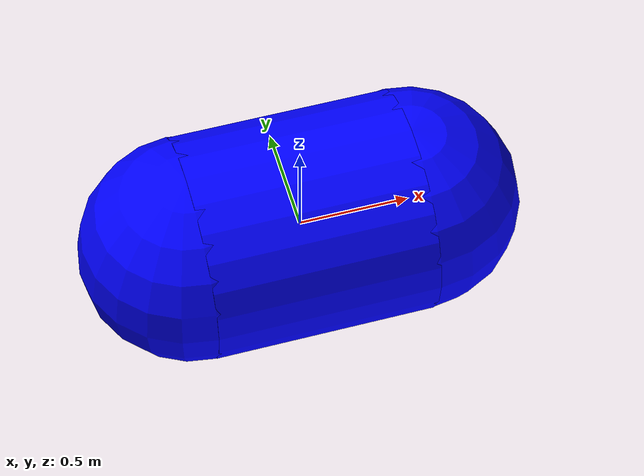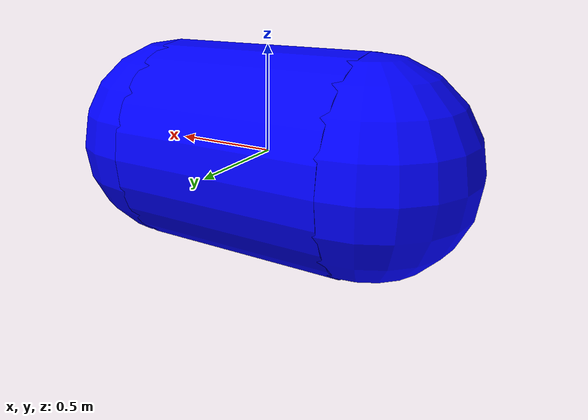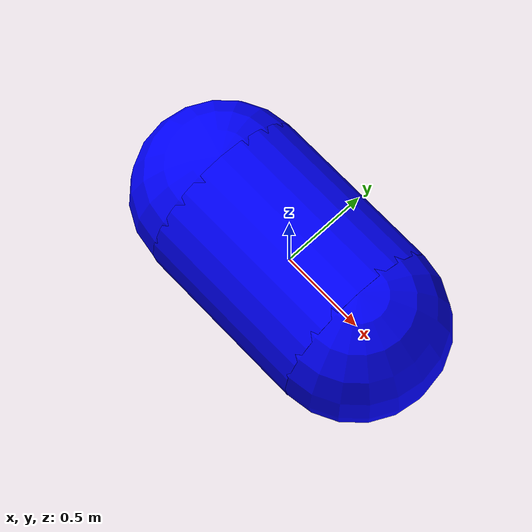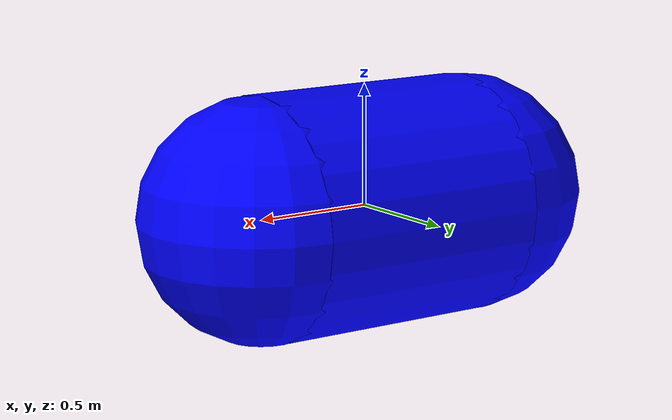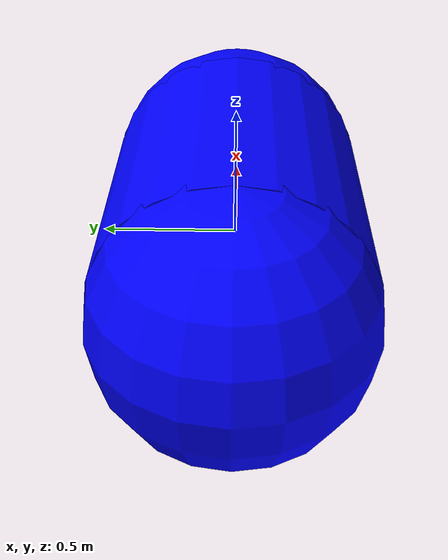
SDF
<?xml version="1.0" ?>
<sdf version="1.8">
    <world name="car_world">
        <physics name="1ms" type="ignored">
            <max_step_size>0.001</max_step_size>
            <real_time_factor>1.0</real_time_factor>
        </physics>
        <plugin
            filename="libignition-gazebo-physics-system.so"
            name="ignition::gazebo::systems::Physics">
        </plugin>
        <plugin
            filename="libignition-gazebo-user-commands-system.so"
            name="ignition::gazebo::systems::UserCommands">
        </plugin>
        <plugin
            filename="libignition-gazebo-scene-broadcaster-system.so"
            name="ignition::gazebo::systems::SceneBroadcaster">
        </plugin>

        <light type="directional" name="sun">
            <cast_shadows>true</cast_shadows>
            <pose>0 0 10 0 0 0</pose>
            <diffuse>0.8 0.8 0.8 1</diffuse>
            <specular>0.2 0.2 0.2 1</specular>
            <attenuation>
                <range>1000</range>
                <constant>0.9</constant>
                <linear>0.01</linear>
                <quadratic>0.001</quadratic>
            </attenuation>
            <direction>-0.5 0.1 -0.9</direction>
        </light>

        <model name='sub' canonical_link='chassis'>
            <plugin
                filename="libignition-gazebo6-velocity-control-system.so"
                name="gz::sim::systems::VelocityControl"
            ></plugin>
            <pose relative_to='world'>0 0 0 0 0 0</pose>
            <link name='chassis'>
                <pose relative_to='__model__'>0 0 0 0 0 0</pose>
                <inertial> <!--inertial properties of the link mass, inertia matix-->
                    <mass>1.14395</mass>
                    <inertia>
                        <ixx>0.095329</ixx>
                        <ixy>0</ixy>
                        <ixz>0</ixz>
                        <iyy>0.381317</iyy>
                        <iyz>0</iyz>
                        <izz>0.476646</izz>
                    </inertia>
                </inertial>
                <visual name='visual1'>
                    <pose relative_to='__model__'>0 0 0 0 1.5708 0</pose>
                    <geometry>
                        <cylinder>
                            <length>1</length>
                            <radius>0.5</radius>
                        </cylinder>
                    </geometry>
                    <!--let's add color to our link-->
                    <material>
                        <ambient>0.0 0.0 1.0 1</ambient>
                        <diffuse>0.0 0.0 1.0 1</diffuse>
                        <specular>0.0 0.0 1.0 1</specular>
                    </material>
                </visual>
                <collision name='collision1'>
                    <pose relative_to='visual1'>0 0 0 0 0 0</pose>
                    <geometry>
                        <cylinder>
                            <length>1</length>
                            <radius>0.5</radius>
                        </cylinder>
                    </geometry>
                </collision>
                <visual name='visual2'>
                    <pose relative_to='__model__'>0.5 0 0 0 0 0</pose>
                    <geometry>
                        <sphere>
                            <radius>0.5</radius>
                        </sphere>
                    </geometry>
                    <material>
                        <ambient>0.0 0.0 1.0 1</ambient>
                        <diffuse>0.0 0.0 1.0 1</diffuse>
                        <specular>0.0 0.0 1.0 1</specular>
                    </material>
                </visual>
                <collision name='collision2'>
                    <pose relative_to='visual2'>0 0 0 0 0 0</pose>
                    <geometry>
                        <cylinder>
                            <length>1</length>
                            <radius>0.5</radius>
                        </cylinder>
                    </geometry>
                </collision>
                <visual name='visual3'>
                    <pose relative_to='__model__'>-0.5 0 0 0 0 0</pose>
                    <geometry>
                        <sphere>
                            <radius>0.5</radius>
                        </sphere>
                    </geometry>
                    <!--let's add color to our link-->
                    <material>
                        <ambient>0.0 0.0 1.0 1</ambient>
                        <diffuse>0.0 0.0 1.0 1</diffuse>
                        <specular>0.0 0.0 1.0 1</specular>
                    </material>
                </visual>
                <collision name='collision3'>
                    <pose relative_to='visual3'>0 0 0 0 0 0</pose>
                    <geometry>
                        <cylinder>
                            <length>1</length>
                            <radius>0.5</radius>
                        </cylinder>
                    </geometry>
                </collision>
            </link>
        </model>
    </world>
</sdf>
